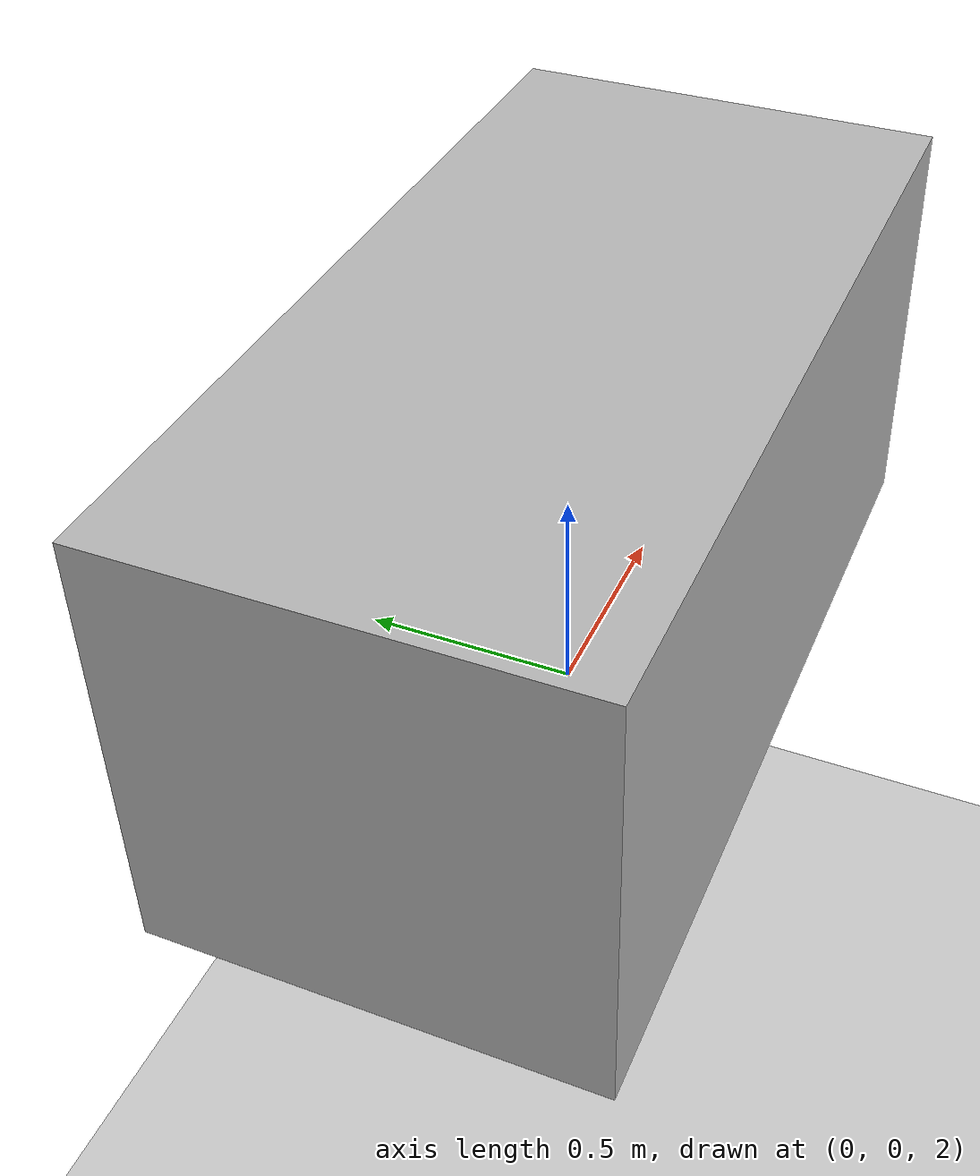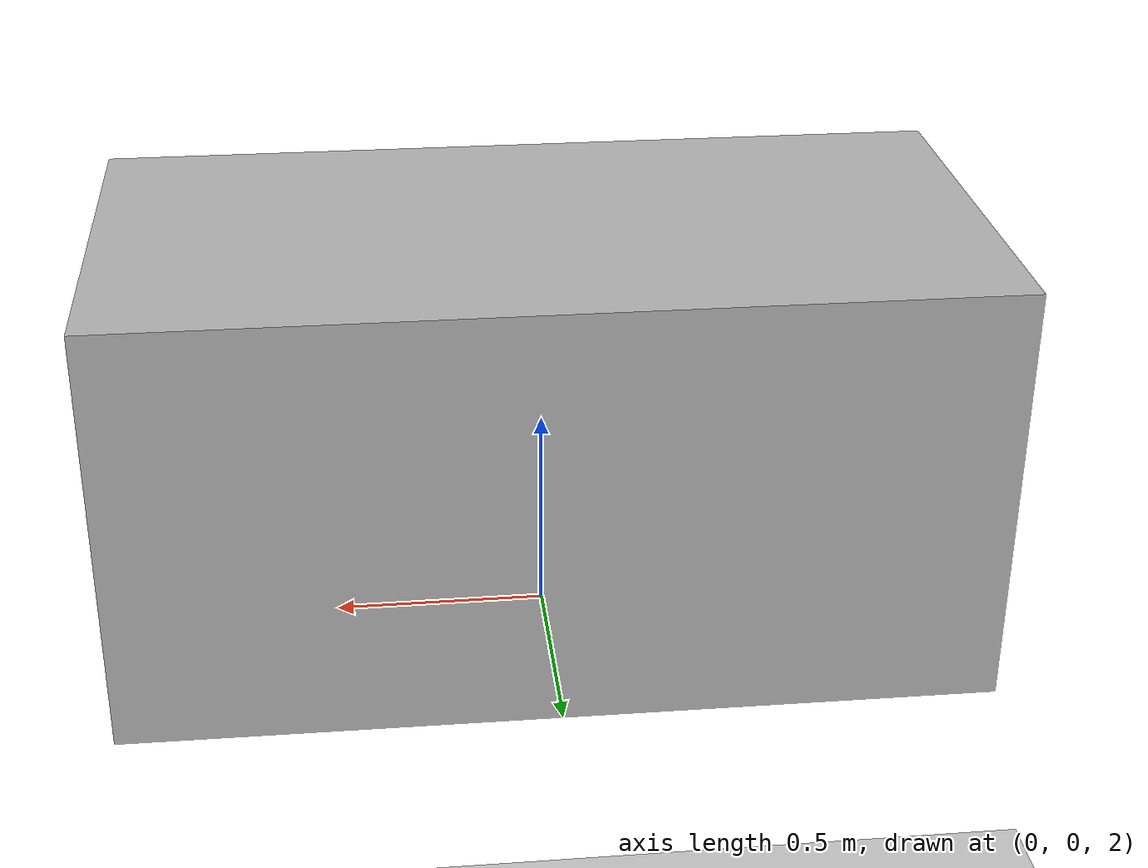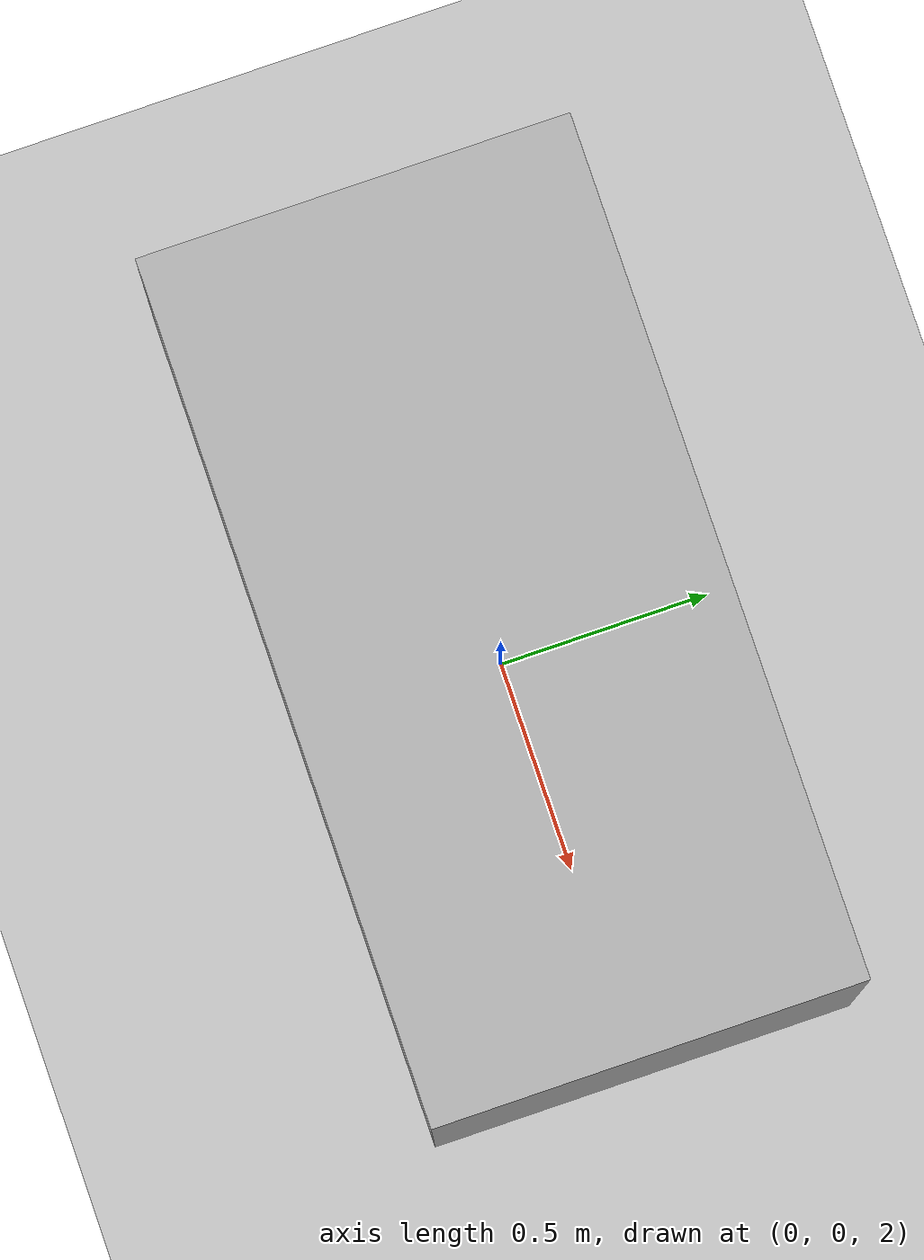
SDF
<sdf version="1.6">
    <world name="default">
        <include>
            <uri>model://ground_plane</uri>
        </include>
        <include>
            <uri>model://sun</uri>
        </include>
        <!-- models-->
        <model name="cube">
            <static>true</static>
            <pose relative_to="world">0 0 2.5 0 0 0</pose>
            <link name="link">
                <visual name="visual">
                    <geometry>
                        <box>
                            <size>2 1 1</size>
                        </box>
                    </geometry>
                </visual>
            </link>
            <joint name="link2imu" type="fixed">
                <parent>link</parent>
                <child>imu</child>

            </joint>
            <link name="imu">
                <pose relative_to="link">0 0 0.5 0 0 1.575</pose>
                <sensor name="my_imu" type="imu">
                    <always_on>true</always_on>
                    <update_rate>10</update_rate>
                    <imu>
                        <angular_velocity>
                            <x>
                                <noise type="gaussian">
                                    <mean>0.0</mean>
                                    <stddev>2e-4</stddev>
                                </noise>
                            </x>
                            <y>
                                <noise type="gaussian">
                                    <mean>0.0</mean>
                                    <stddev>2e-4</stddev>
                                </noise>
                            </y>
                            <z>
                                <noise type="gaussian">
                                    <mean>0.0</mean>
                                    <stddev>2e-4</stddev>
                                </noise>
                            </z>
                        </angular_velocity>
                        <linear_acceleration>
                            <x>
                                <noise type="gaussian">
                                    <mean>0.0</mean>
                                    <stddev>1.7e-2</stddev>
                                </noise>
                            </x>
                            <y>
                                <noise type="gaussian">
                                    <mean>0.0</mean>
                                    <stddev>1.7e-2</stddev>
                                </noise>
                            </y>
                            <z>
                                <noise type="gaussian">
                                    <mean>0.0</mean>
                                    <stddev>1.7e-2</stddev>
                                </noise>
                            </z>
                        </linear_acceleration>
                    </imu>
                    <plugin name="my_imu_plugin" filename="libgazebo_ros_imu_sensor.so">
                        <initial_orientation_as_reference>false</initial_orientation_as_reference>
                        <ros>
                            <!-- Will publish to /imu/data -->
                            <namespace>/imu</namespace>
                            <remapping>~/out:=data</remapping>
                        </ros>
                        <!-- frame_name ommited, will be "my_link" -->
                    </plugin>
                </sensor>
            </link>
        </model>
        <!-- plugins -->
        <plugin name="gazebo_ros_state" filename="libgazebo_ros_state.so">

            <ros>
                <namespace>/demo</namespace>
                <argument>--ros-args --remap model_states:=model_states_demo</argument>
            </ros>
            <update_rate>1.0</update_rate>
        </plugin>
    </world>
</sdf>
